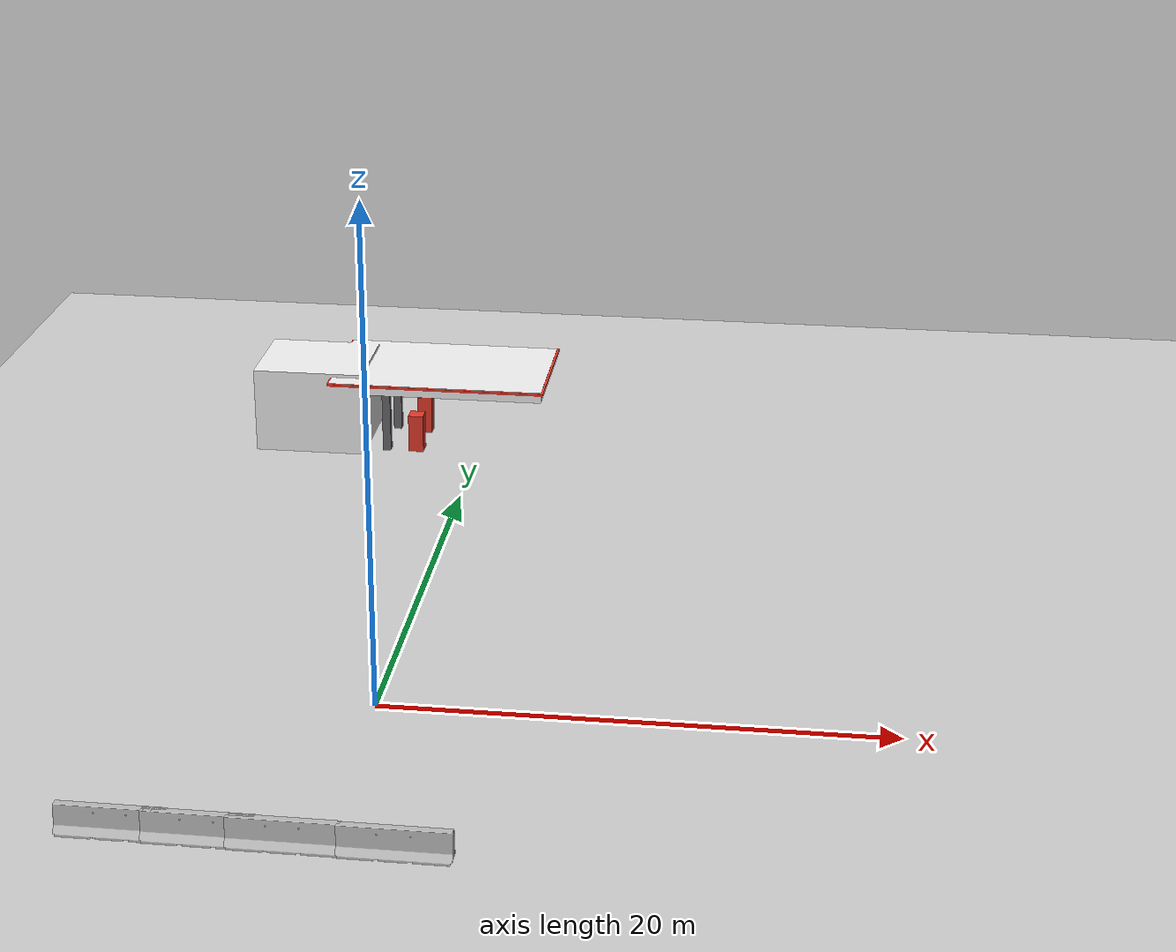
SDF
<sdf version="1.6">
 <world name="default">
  <light name="sun" type="directional">
   <pose>0 0 10 0 -0 0</pose>
   <diffuse>0.8 0.8 0.8 1</diffuse>
   <specular>0.2 0.2 0.2 1</specular>
   <attenuation>
    <range>1000</range>
    <constant>0.9</constant>
    <linear>0.01</linear>
    <quadratic>0.001</quadratic>
   </attenuation>
   <direction>-0.5 0.1 -0.9</direction>
  </light>
  <model name="ground_plane">
   <static>1</static>
   <link name="link">
    <collision name="collision">
     <geometry><plane><normal>0 0 1</normal><size>100 100</size></plane></geometry>
     <surface><friction><ode><mu>100</mu><mu2>50</mu2></ode></friction></surface>
    </collision>
    <visual name="visual">
     <cast_shadows>0</cast_shadows>
     <geometry><plane><normal>0 0 1</normal><size>100 100</size></plane></geometry>
     <material>
      <script><uri>file://media/materials/scripts/gazebo.material</uri><name>Gazebo/Grey</name></script>
     </material>
    </visual>
   </link>
  </model>
  <gravity>0 0 -9.8</gravity>
  <magnetic_field>6e-06 2.3e-05 -4.2e-05</magnetic_field>
  <atmosphere type="adiabatic"/>
  <physics name="default_physics" default="0" type="ode">
   <max_step_size>0.001</max_step_size>
   <real_time_factor>1</real_time_factor>
   <real_time_update_rate>1000</real_time_update_rate>
  </physics>
  <scene><ambient>0.4 0.4 0.4 1</ambient><background>0.7 0.7 0.7 1</background><shadows>1</shadows></scene>
  <spherical_coordinates>
   <surface_model>EARTH_WGS84</surface_model>
   <latitude_deg>0</latitude_deg>
   <longitude_deg>0</longitude_deg>
   <elevation>0</elevation>
   <heading_deg>0</heading_deg>
  </spherical_coordinates>
  <model name="jersey_barrier">
   <static>1</static>
   <link name="link">
    <visual name="visual">
     <geometry><mesh><uri>model://jersey_barrier/meshes/jersey_barrier.dae</uri></mesh></geometry>
    </visual>
    <collision name="upright">
     <pose>0 0 0.5715 0 -0 0</pose>
     <geometry><box><size>4.06542 0.3063 1.143</size></box></geometry>
    </collision>
    <collision name="base">
     <pose>0 0 0.032258 0 -0 0</pose>
     <geometry><box><size>4.06542 0.8107 0.064516</size></box></geometry>
    </collision>
    <collision name="base2">
     <pose>0 0 0.1 0 -0 0</pose>
     <geometry><box><size>4.06542 0.65 0.1</size></box></geometry>
    </collision>
    <collision name="base3">
     <pose>0 0 0.2 0 -0 0</pose>
     <geometry><box><size>4.06542 0.5 0.1</size></box></geometry>
    </collision>
    <collision name="left-angle">
     <pose>0 -0.224 0.2401 0.9 -0 0</pose>
     <geometry><box><size>4.06542 0.5 0.064516</size></box></geometry>
    </collision>
    <collision name="right-angle">
     <pose>0 0.224 0.2401 -0.9 0 0</pose>
     <geometry><box><size>4.06542 0.5 0.064516</size></box></geometry>
    </collision>
   </link>
   <pose>-7.24291 -10.2607 0 0 -0 0</pose>
  </model>
  <model name="jersey_barrier_0">
   <static>1</static>
   <link name="link">
    <visual name="visual">
     <geometry><mesh><uri>model://jersey_barrier/meshes/jersey_barrier.dae</uri></mesh></geometry>
    </visual>
    <collision name="upright">
     <pose>0 0 0.5715 0 -0 0</pose>
     <geometry><box><size>4.06542 0.3063 1.143</size></box></geometry>
    </collision>
    <collision name="base">
     <pose>0 0 0.032258 0 -0 0</pose>
     <geometry><box><size>4.06542 0.8107 0.064516</size></box></geometry>
    </collision>
    <collision name="base2">
     <pose>0 0 0.1 0 -0 0</pose>
     <geometry><box><size>4.06542 0.65 0.1</size></box></geometry>
    </collision>
    <collision name="base3">
     <pose>0 0 0.2 0 -0 0</pose>
     <geometry><box><size>4.06542 0.5 0.1</size></box></geometry>
    </collision>
    <collision name="left-angle">
     <pose>0 -0.224 0.2401 0.9 -0 0</pose>
     <geometry><box><size>4.06542 0.5 0.064516</size></box></geometry>
    </collision>
    <collision name="right-angle">
     <pose>0 0.224 0.2401 -0.9 0 0</pose>
     <geometry><box><size>4.06542 0.5 0.064516</size></box></geometry>
    </collision>
   </link>
   <pose>-4.14973 -10.2978 0 0 -0 0</pose>
  </model>
  <model name="jersey_barrier_1">
   <static>1</static>
   <link name="link">
    <visual name="visual">
     <geometry><mesh><uri>model://jersey_barrier/meshes/jersey_barrier.dae</uri></mesh></geometry>
    </visual>
    <collision name="upright">
     <pose>0 0 0.5715 0 -0 0</pose>
     <geometry><box><size>4.06542 0.3063 1.143</size></box></geometry>
    </collision>
    <collision name="base">
     <pose>0 0 0.032258 0 -0 0</pose>
     <geometry><box><size>4.06542 0.8107 0.064516</size></box></geometry>
    </collision>
    <collision name="base2">
     <pose>0 0 0.1 0 -0 0</pose>
     <geometry><box><size>4.06542 0.65 0.1</size></box></geometry>
    </collision>
    <collision name="base3">
     <pose>0 0 0.2 0 -0 0</pose>
     <geometry><box><size>4.06542 0.5 0.1</size></box></geometry>
    </collision>
    <collision name="left-angle">
     <pose>0 -0.224 0.2401 0.9 -0 0</pose>
     <geometry><box><size>4.06542 0.5 0.064516</size></box></geometry>
    </collision>
    <collision name="right-angle">
     <pose>0 0.224 0.2401 -0.9 0 0</pose>
     <geometry><box><size>4.06542 0.5 0.064516</size></box></geometry>
    </collision>
   </link>
   <pose>-1.15682 -10.3276 0 0 -0 0</pose>
  </model>
  <model name="jersey_barrier_2">
   <static>1</static>
   <link name="link">
    <visual name="visual">
     <geometry><mesh><uri>model://jersey_barrier/meshes/jersey_barrier.dae</uri></mesh></geometry>
    </visual>
    <collision name="upright">
     <pose>0 0 0.5715 0 -0 0</pose>
     <geometry><box><size>4.06542 0.3063 1.143</size></box></geometry>
    </collision>
    <collision name="base">
     <pose>0 0 0.032258 0 -0 0</pose>
     <geometry><box><size>4.06542 0.8107 0.064516</size></box></geometry>
    </collision>
    <collision name="base2">
     <pose>0 0 0.1 0 -0 0</pose>
     <geometry><box><size>4.06542 0.65 0.1</size></box></geometry>
    </collision>
    <collision name="base3">
     <pose>0 0 0.2 0 -0 0</pose>
     <geometry><box><size>4.06542 0.5 0.1</size></box></geometry>
    </collision>
    <collision name="left-angle">
     <pose>0 -0.224 0.2401 0.9 -0 0</pose>
     <geometry><box><size>4.06542 0.5 0.064516</size></box></geometry>
    </collision>
    <collision name="right-angle">
     <pose>0 0.224 0.2401 -0.9 0 0</pose>
     <geometry><box><size>4.06542 0.5 0.064516</size></box></geometry>
    </collision>
   </link>
   <pose>2.73434 -10.3693 0 0 -0 0</pose>
  </model>
  <model name="Gas Station">
   <static>1</static>
   <link name="link">
    <collision name="collision">
     <geometry><mesh><uri>model://gas_station/meshes/gas_station.dae</uri></mesh></geometry>
    </collision>
    <visual name="visual">
     <geometry><mesh><uri>model://gas_station/meshes/gas_station.dae</uri></mesh></geometry>
     <material>
      <script>
       <uri>model://gas_station/materials/scripts</uri>
       <uri>model://gas_station/materials/textures</uri>
       <name>GasStation/Diffuse</name>
      </script>
      <shader type="normal_map_tangent_space"><normal_map>GasStation_Normal.png</normal_map></shader>
     </material>
    </visual>
   </link>
   <pose>-4.16692 26.5219 0 0 -0 0</pose>
  </model>
 </world>
</sdf>
